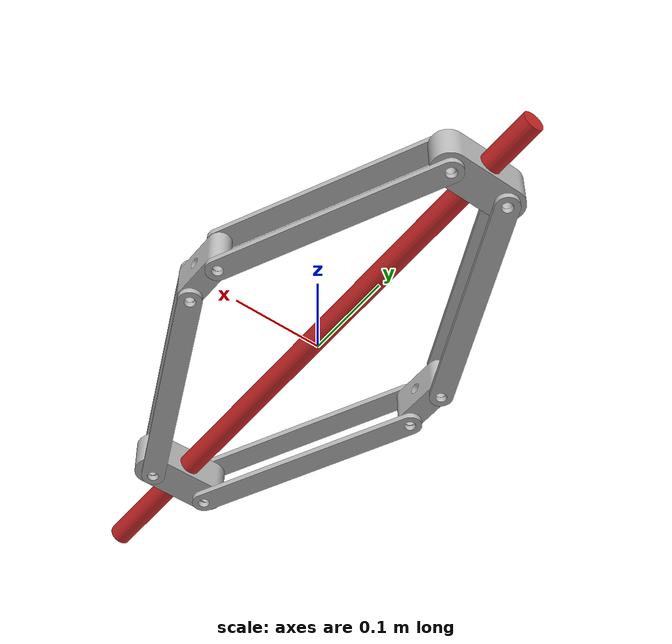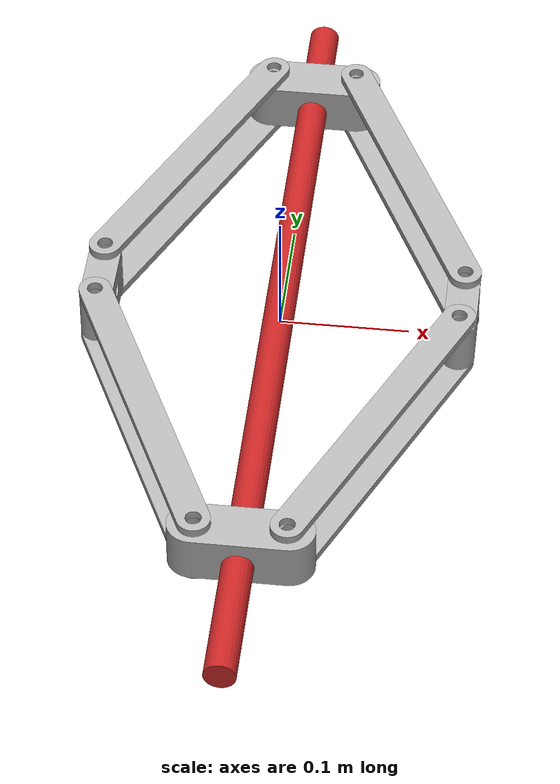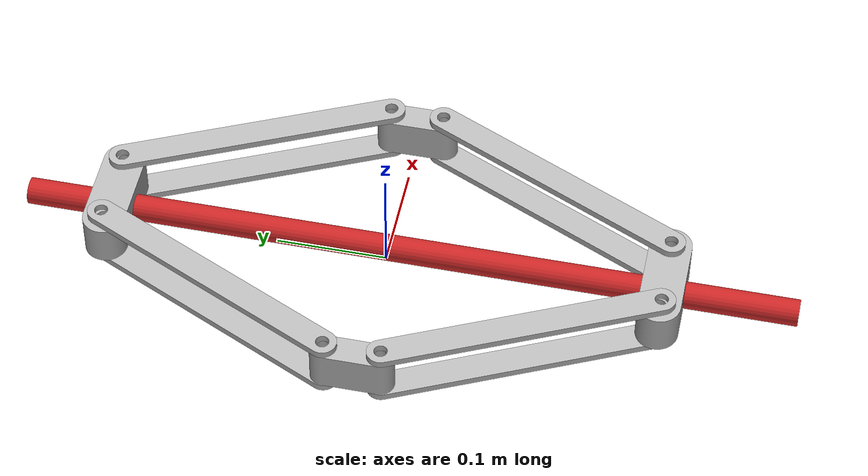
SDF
<?xml version="1.0"?>
<sdf version="1.6">
  <model name='gripper'>
    <static>False</static>
    <link name='left_long_joint'>
      <pose>0 0.25 0.019 -1.57 0 0</pose>
      <inertial>
        <pose>-0.000104 -0.000077 -0.0 0 0 0</pose>
        <mass>0.3186</mass>
        <inertia>
          <ixx>7.938e-05</ixx>
          <ixy>0</ixy>
          <ixz>0</ixz>
          <iyy>3.3715e-04</iyy>
          <iyz>0</iyz>
          <izz>3.3664e-04</izz>
        </inertia>
      </inertial>
      <collision name="collision">
        <geometry>
          <mesh>
            <uri>model://gripper/meshes/joint_long.dae</uri>
            <scale>1 1 1</scale>
          </mesh>
        </geometry>
        <surface>
          <contact>
            <collide_bitmask>0xffff</collide_bitmask>
          </contact>
          <friction>
            <ode>
              <mu>100</mu>
              <mu2>50</mu2>
            </ode>
          </friction>
        </surface>
      </collision>
      <visual name='visual'>
        <geometry>
          <mesh>
            <uri>model://gripper/meshes/joint_long.dae</uri>
            <scale>1 1 1</scale>
          </mesh>
        </geometry>
      </visual>
    </link>
    <link name='right_long_joint'>
      <pose>0 -0.25 0.019 -1.57 0 0</pose>
      <collision name="collision">
        <geometry>
          <mesh>
            <uri>model://gripper/meshes/joint_long.dae</uri>
            <scale>1 1 1</scale>
          </mesh>
        </geometry>
        <surface>
          <contact>
            <collide_bitmask>0xffff</collide_bitmask>
          </contact>
          <friction>
            <ode>
              <mu>100</mu>
              <mu2>50</mu2>
            </ode>
          </friction>
        </surface>
      </collision>
      <visual name='visual'>
        <geometry>
          <mesh>
            <uri>model://gripper/meshes/joint_long.dae</uri>
            <scale>1 1 1</scale>
          </mesh>
        </geometry>
      </visual>
      <inertial>
        <pose>-0.000104 -0.000077 -0.0 0 0 0</pose>
        <mass>0.3186</mass>
        <inertia>
          <ixx>7.938e-05</ixx>
          <ixy>0</ixy>
          <ixz>0</ixz>
          <iyy>3.3715e-04</iyy>
          <iyz>0</iyz>
          <izz>3.3664e-04</izz>
        </inertia>
      </inertial>
    </link>
    <link name='left_short_joint'>
      <pose>0.14 0 0 1.57 0 1.57</pose>
      <collision name="collision">
        <geometry>
          <mesh>
            <uri>model://gripper/meshes/joint_short.dae</uri>
            <scale>1 1 1</scale>
          </mesh>
        </geometry>
        <surface>
          <contact>
            <collide_bitmask>0xffff</collide_bitmask>
          </contact>
          <friction>
            <ode>
              <mu>100</mu>
              <mu2>50</mu2>
            </ode>
          </friction>
        </surface>
      </collision>
      <visual name='visual'>
        <geometry>
          <mesh>
            <uri>model://gripper/meshes/joint_short.dae</uri>
            <scale>1 1 1</scale>
          </mesh>
        </geometry>
      </visual>
      <inertial>
        <pose>0.0 0.01896 -0.000157 0 0 0</pose>
        <mass>0.1512</mass>
        <inertia>
          <ixx>2.689e-05</ixx>
          <ixy>-0</ixy>
          <ixz>-0</ixz>
          <iyy>6.696e-05</iyy>
          <iyz>0</iyz>
          <izz>7.741e-05</izz>
        </inertia>
      </inertial>
    </link>
    <link name='right_short_joint'>
      <pose>-0.14 0 0 1.57 0 1.57</pose>
      <collision name="collision">
        <geometry>
          <mesh>
            <uri>model://gripper/meshes/joint_short.dae</uri>
            <scale>1 1 1</scale>
          </mesh>
        </geometry>
        <surface>
          <contact>
            <collide_bitmask>0xffff</collide_bitmask>
          </contact>
          <friction>
            <ode>
              <mu>100</mu>
              <mu2>50</mu2>
            </ode>
          </friction>
        </surface>
      </collision>
      <visual name='visual'>
        <geometry>
          <mesh>
            <uri>model://gripper/meshes/joint_short.dae</uri>
            <scale>1 1 1</scale>
          </mesh>
        </geometry>
      </visual>
      <inertial>
        <pose>0.0 0.01896 -0.000157 0 0 0</pose>
        <mass>0.1512</mass>
        <inertia>
          <ixx>2.689e-05</ixx>
          <ixy>-0</ixy>
          <ixz>-0</ixz>
          <iyy>6.696e-05</iyy>
          <iyz>0</iyz>
          <izz>7.741e-05</izz>
        </inertia>
      </inertial>
    </link>
    <link name='flat_plate1'>
      <pose>0.0456 0.2565 0.038 1.57 0 -1.132</pose>
      <collision name="collision">
        <geometry>
          <mesh>
            <uri>model://gripper/meshes/flat_plate.dae</uri>
            <scale>1 1 1</scale>
          </mesh>
        </geometry>
        <surface>
          <contact>
            <collide_bitmask>0xffff</collide_bitmask>
          </contact>
          <friction>
            <ode>
              <mu>100</mu>
              <mu2>50</mu2>
            </ode>
          </friction>
        </surface>
      </collision>
      <visual name='visual'>
        <geometry>
          <mesh>
            <uri>model://gripper/meshes/flat_plate.dae</uri>
            <scale>1 1 1</scale>
          </mesh>
        </geometry>
      </visual>
      <inertial>
        <pose>0.125 0.00325 0.012500 0 0 0</pose>
        <mass>0.0651</mass>
        <inertia>
          <ixx>3.689e-06</ixx>
          <ixy>-0</ixy>
          <ixz>-0</ixz>
          <iyy>3.797e-04</iyy>
          <iyz>0</iyz>
          <izz>3.764e-04</izz>
        </inertia>
      </inertial>
    </link>
    <link name='flat_plate2'>
      <pose>-0.1289 -0.02 0.038 1.57 0 -1.132</pose>
      <collision name="collision">
        <geometry>
          <mesh>
            <uri>model://gripper/meshes/flat_plate.dae</uri>
            <scale>1 1 1</scale>
          </mesh>
        </geometry>
        <surface>
          <contact>
            <collide_bitmask>0xffff</collide_bitmask>
          </contact>
          <friction>
            <ode>
              <mu>100</mu>
              <mu2>50</mu2>
            </ode>
          </friction>
        </surface>
      </collision>
      <visual name='visual'>
        <geometry>
          <mesh>
            <uri>model://gripper/meshes/flat_plate.dae</uri>
            <scale>1 1 1</scale>
          </mesh>
        </geometry>
      </visual>
      <inertial>
        <pose>0.125 0.00325 0.012500 0 0 0</pose>
        <mass>0.0651</mass>
        <inertia>
          <ixx>3.689e-06</ixx>
          <ixy>-0</ixy>
          <ixz>-0</ixz>
          <iyy>3.797e-04</iyy>
          <iyz>0</iyz>
          <izz>3.764e-04</izz>
        </inertia>
      </inertial>
    </link>
    <link name='flat_plate3'>
      <pose>-0.1515 0.031 0.038 1.57 0 1.132</pose>
      <collision name="collision">
        <geometry>
          <mesh>
            <uri>model://gripper/meshes/flat_plate.dae</uri>
            <scale>1 1 1</scale>
          </mesh>
        </geometry>
        <surface>
          <contact>
            <collide_bitmask>0xffff</collide_bitmask>
          </contact>
          <friction>
            <ode>
              <mu>100</mu>
              <mu2>50</mu2>
            </ode>
          </friction>
        </surface>
      </collision>
      <visual name='visual'>
        <geometry>
          <mesh>
            <uri>model://gripper/meshes/flat_plate.dae</uri>
            <scale>1 1 1</scale>
          </mesh>
        </geometry>
      </visual>
      <inertial>
        <pose>0.125 0.00325 0.012500 0 0 0</pose>
        <mass>0.0651</mass>
        <inertia>
          <ixx>3.689e-06</ixx>
          <ixy>-0</ixy>
          <ixz>-0</ixz>
          <iyy>3.797e-04</iyy>
          <iyz>0</iyz>
          <izz>3.764e-04</izz>
        </inertia>
      </inertial>
    </link>
    <link name='flat_plate4'>
      <pose>0.022 -0.245 0.038 1.57 0 1.132</pose>
      <collision name="collision">
        <geometry>
          <mesh>
            <uri>model://gripper/meshes/flat_plate.dae</uri>
            <scale>1 1 1</scale>
          </mesh>
        </geometry>
        <surface>
          <contact>
            <collide_bitmask>0xffff</collide_bitmask>
          </contact>
          <friction>
            <ode>
              <mu>100</mu>
              <mu2>50</mu2>
            </ode>
          </friction>
        </surface>
      </collision>
      <visual name='visual'>
        <geometry>
          <mesh>
            <uri>model://gripper/meshes/flat_plate.dae</uri>
            <scale>1 1 1</scale>
          </mesh>
        </geometry>
      </visual>
      <inertial>
        <pose>0.125 0.00325 0.012500 0 0 0</pose>
        <mass>0.0651</mass>
        <inertia>
          <ixx>3.689e-06</ixx>
          <ixy>-0</ixy>
          <ixz>-0</ixz>
          <iyy>3.797e-04</iyy>
          <iyz>0</iyz>
          <izz>3.764e-04</izz>
        </inertia>
      </inertial>
    </link>

    <link name='flat_plate5'>
      <pose>0.0456 0.2565 -0.007 1.57 0 -1.132</pose>
      <collision name="collision">
        <geometry>
          <mesh>
            <uri>model://gripper/meshes/flat_plate.dae</uri>
            <scale>1 1 1</scale>
          </mesh>
        </geometry>
        <surface>
          <contact>
            <collide_bitmask>0xffff</collide_bitmask>
          </contact>
          <friction>
            <ode>
              <mu>100</mu>
              <mu2>50</mu2>
            </ode>
          </friction>
        </surface>
      </collision>
      <visual name='visual'>
        <geometry>
          <mesh>
            <uri>model://gripper/meshes/flat_plate.dae</uri>
            <scale>1 1 1</scale>
          </mesh>
        </geometry>
      </visual>
      <inertial>
        <pose>0.125 0.00325 0.012500 0 0 0</pose>
        <mass>0.0651</mass>
        <inertia>
          <ixx>3.689e-06</ixx>
          <ixy>-0</ixy>
          <ixz>-0</ixz>
          <iyy>3.797e-04</iyy>
          <iyz>0</iyz>
          <izz>3.764e-04</izz>
        </inertia>
      </inertial>
    </link>
    <link name='flat_plate6'>
      <pose>-0.1289 -0.02 -0.007 1.57 0 -1.132</pose>
      <collision name="collision">
        <geometry>
          <mesh>
            <uri>model://gripper/meshes/flat_plate.dae</uri>
            <scale>1 1 1</scale>
          </mesh>
        </geometry>
        <surface>
          <contact>
            <collide_bitmask>0xffff</collide_bitmask>
          </contact>
          <friction>
            <ode>
              <mu>100</mu>
              <mu2>50</mu2>
            </ode>
          </friction>
        </surface>
      </collision>
      <visual name='visual'>
        <geometry>
          <mesh>
            <uri>model://gripper/meshes/flat_plate.dae</uri>
            <scale>1 1 1</scale>
          </mesh>
        </geometry>
      </visual>
      <inertial>
        <pose>0.125 0.00325 0.012500 0 0 0</pose>
        <mass>0.0651</mass>
        <inertia>
          <ixx>3.689e-06</ixx>
          <ixy>-0</ixy>
          <ixz>-0</ixz>
          <iyy>3.797e-04</iyy>
          <iyz>0</iyz>
          <izz>3.764e-04</izz>
        </inertia>
      </inertial>
    </link>
    <link name='flat_plate7'>
      <pose>-0.1515 0.031 -0.007 1.57 0 1.132</pose>
      <collision name="collision">
        <geometry>
          <mesh>
            <uri>model://gripper/meshes/flat_plate.dae</uri>
            <scale>1 1 1</scale>
          </mesh>
        </geometry>
        <surface>
          <contact>
            <collide_bitmask>0xffff</collide_bitmask>
          </contact>
          <friction>
            <ode>
              <mu>100</mu>
              <mu2>50</mu2>
            </ode>
          </friction>
        </surface>
      </collision>
      <visual name='visual'>
        <geometry>
          <mesh>
            <uri>model://gripper/meshes/flat_plate.dae</uri>
            <scale>1 1 1</scale>
          </mesh>
        </geometry>
      </visual>
      <inertial>
        <pose>0.125 0.00325 0.012500 0 0 0</pose>
        <mass>0.0651</mass>
        <inertia>
          <ixx>3.689e-06</ixx>
          <ixy>-0</ixy>
          <ixz>-0</ixz>
          <iyy>3.797e-04</iyy>
          <iyz>0</iyz>
          <izz>3.764e-04</izz>
        </inertia>
      </inertial>
    </link>
    <link name='flat_plate8'>
      <pose>0.022 -0.245 -0.007 1.57 0 1.132</pose>
      <collision name="collision">
        <geometry>
          <mesh>
            <uri>model://gripper/meshes/flat_plate.dae</uri>
            <scale>1 1 1</scale>
          </mesh>
        </geometry>
        <surface>
          <contact>
            <collide_bitmask>0xffff</collide_bitmask>
          </contact>
          <friction>
            <ode>
              <mu>100</mu>
              <mu2>50</mu2>
            </ode>
          </friction>
        </surface>
      </collision>
      <visual name='visual'>
        <geometry>
          <mesh>
            <uri>model://gripper/meshes/flat_plate.dae</uri>
            <scale>1 1 1</scale>
          </mesh>
        </geometry>
      </visual>
      <inertial>
        <pose>0.125 0.00325 0.012500 0 0 0</pose>
        <mass>0.0651</mass>
        <inertia>
          <ixx>3.689e-06</ixx>
          <ixy>-0</ixy>
          <ixz>-0</ixz>
          <iyy>3.797e-04</iyy>
          <iyz>0</iyz>
          <izz>3.764e-04</izz>
        </inertia>
      </inertial>
    </link>

    <link name='screw_rod'>
      <pose>-0.00015 -0.02 0.0153 0 1.57 1.57 </pose>
      <collision name="collision">
        <geometry>
          <cylinder>
            <radius>0.012</radius>
            <length>1</length>
          </cylinder>
        </geometry>
      </collision>
      <visual name="visual">
        <material>
          <script>
            <name>Gazebo/Red</name>
            <uri>file://media/materials/scripts/gazebo.material</uri>
          </script>
          <shader type='pixel'/>
        </material>
        <geometry>
          <cylinder>
            <radius>0.012</radius>
            <length>0.7</length>
          </cylinder>
        </geometry>
      </visual>
      <inertial>
        <pose>0 0 0.32263 0 1.57 0</pose>
        <mass>1.29</mass>
        <inertia>
          <ixx>1.8357e-04</ixx>
          <ixy>-0</ixy>
          <ixz>-0</ixz>
          <iyy>8.006e-02</iyy>
          <iyz>0</iyz>
          <izz>8.006e-02</izz>
        </inertia>
      </inertial>
    </link>

    <joint name="j1" type="revolute">
      <pose> 0.25 0 0.01 0 0 0</pose>
      <child>flat_plate1</child>
      <parent>left_short_joint</parent>
      <axis>
        <limit>
          <lower>-0.5</lower>
          <upper>0.1</upper>
        </limit>
        <xyz>0 1 0</xyz>
      </axis>
    </joint>
    <joint name="j2" type="revolute">
      <pose> 0 0 0.01 0 0 0</pose>
      <child>flat_plate1</child>
      <parent>left_long_joint</parent>
      <axis>
        <limit>
          <lower>-0.5</lower>
          <upper>0.1</upper>
        </limit>
        <xyz>0 1 0</xyz>
      </axis>
    </joint>
    <joint name="j3" type="revolute">
      <pose> 0 0 0.01 0 0 0</pose>
      <child>flat_plate2</child>
      <parent>right_short_joint</parent>
      <axis>
        <limit>
          <lower>-0.5</lower>
          <upper>0.1</upper>
        </limit>
        <xyz>0 1 0</xyz>
      </axis>
    </joint>
    <joint name="j4" type="revolute">
      <pose> 0.25 0 0.01 0 0 0</pose>
      <child>flat_plate2</child>
      <parent>right_long_joint</parent>
      <axis>
        <limit>
          <lower>-0.5</lower>
          <upper>0.1</upper>
        </limit>
        <xyz>0 1 0</xyz>
      </axis>
    </joint>
    <joint name="j5" type="revolute">
      <pose> 0 0 0.01 0 0 0</pose>
      <child>flat_plate3</child>
      <parent>right_short_joint</parent>
      <axis>
        <limit>
          <lower>-0.5</lower>
          <upper>0.1</upper>
        </limit>
        <xyz>0 1 0</xyz>
      </axis>
    </joint>
    <joint name="j6" type="revolute">
      <pose> 0.25 0 0.01 0 0 0</pose>
      <child>flat_plate3</child>
      <parent>left_long_joint</parent>
      <axis>
        <limit>
          <lower>-0.5</lower>
          <upper>0.1</upper>
        </limit>
        <xyz>0 1 0</xyz>
      </axis>
    </joint>
    <joint name="j7" type="revolute">
      <pose> 0.25 0 0.01 0 0 0</pose>
      <child>flat_plate4</child>
      <parent>left_short_joint</parent>
      <axis>
        <limit>
          <lower>-0.5</lower>
          <upper>0.1</upper>
        </limit>
        <xyz>0 1 0</xyz>
      </axis>
    </joint>
    <joint name="j8" type="revolute">
      <pose> 0 0 0.01 0 0 0</pose>
      <child>flat_plate4</child>
      <parent>right_long_joint</parent>
      <axis>
        <limit>
          <lower>-0.5</lower>
          <upper>0.1</upper>
        </limit>
        <xyz>0 1 0</xyz>
      </axis>
    </joint>

    <joint name="j9" type="revolute">
      <pose> 0.25 0 0.01 0 0 0</pose>
      <child>flat_plate5</child>
      <parent>left_short_joint</parent>
      <axis>
        <limit>
          <lower>-0.5</lower>
          <upper>0.1</upper>
        </limit>
        <xyz>0 -1 0</xyz>
      </axis>
    </joint>
    <joint name="j10" type="revolute">
      <pose> 0 0 0.01 0 0 0</pose>
      <child>flat_plate5</child>
      <parent>left_long_joint</parent>
      <axis>
        <limit>
          <lower>-0.5</lower>
          <upper>0.1</upper>
        </limit>
        <xyz>0 -1 0</xyz>
      </axis>
    </joint>
    <joint name="j11" type="revolute">
      <pose> 0 0 0.01 0 0 0</pose>
      <child>flat_plate6</child>
      <parent>right_short_joint</parent>
      <axis>
        <limit>
          <lower>-0.5</lower>
          <upper>0.1</upper>
        </limit>
        <xyz>0 -1 0</xyz>
      </axis>
    </joint>
    <joint name="j12" type="revolute">
      <pose> 0.25 0 0.01 0 0 0</pose>
      <child>flat_plate6</child>
      <parent>right_long_joint</parent>
      <axis>
        <limit>
          <lower>-0.5</lower>
          <upper>0.1</upper>
        </limit>
        <xyz>0 -1 0</xyz>
      </axis>
    </joint>
    <joint name="j13" type="revolute">
      <pose> 0 0 0.01 0 0 0</pose>
      <child>flat_plate7</child>
      <parent>right_short_joint</parent>
      <axis>
        <limit>
          <lower>-0.5</lower>
          <upper>0.1</upper>
        </limit>
        <xyz>0 -1 0</xyz>
      </axis>
    </joint>
    <joint name="j14" type="revolute">
      <pose> 0.25 0 0.01 0 0 0</pose>
      <child>flat_plate7</child>
      <parent>left_long_joint</parent>
      <axis>
        <limit>
          <lower>-0.5</lower>
          <upper>0.1</upper>
        </limit>
        <xyz>0 -1 0</xyz>
      </axis>
    </joint>
    <joint name="j15" type="revolute">
      <pose> 0.25 0 0.01 0 0 0</pose>
      <child>flat_plate8</child>
      <parent>left_short_joint</parent>
      <axis>
        <limit>
          <lower>-0.5</lower>
          <upper>0.1</upper>
        </limit>
        <xyz>0 -1 0</xyz>
      </axis>
    </joint>
    <joint name="j16" type="revolute">
      <pose> 0 0 0.01 0 0 0</pose>
      <child>flat_plate8</child>
      <parent>right_long_joint</parent>
      <axis>
        <limit>
          <lower>-0.5</lower>
          <upper>0.1</upper>
        </limit>
        <xyz>0 -1 0</xyz>
      </axis>
    </joint>
    <joint name="piston_joint_1" type ="screw">
      <pose>0 0.004 0 0 0 0</pose>
      <parent>screw_rod</parent>
      <child>right_long_joint</child>
      <axis>
        <xyz>0 1 0</xyz>
      </axis>
      <thread_pitch>100</thread_pitch>
    </joint>

    <joint name="piston_joint_2" type ="screw">
      <pose>0 0.004 0 0 0 0</pose>
      <parent>screw_rod</parent>
      <child>left_long_joint</child>
      <axis>
        <xyz>0 1 0</xyz>
      </axis>
      <thread_pitch>-100</thread_pitch>
    </joint>

    <plugin name="gripper_plugin" filename="libiarc_gripper_plugin.so">
      <namespace>firefly</namespace>
      <link_name>screw_rod</link_name>
      <torque_magnitude>1.5</torque_magnitude>
    </plugin>
  </model>
</sdf>
